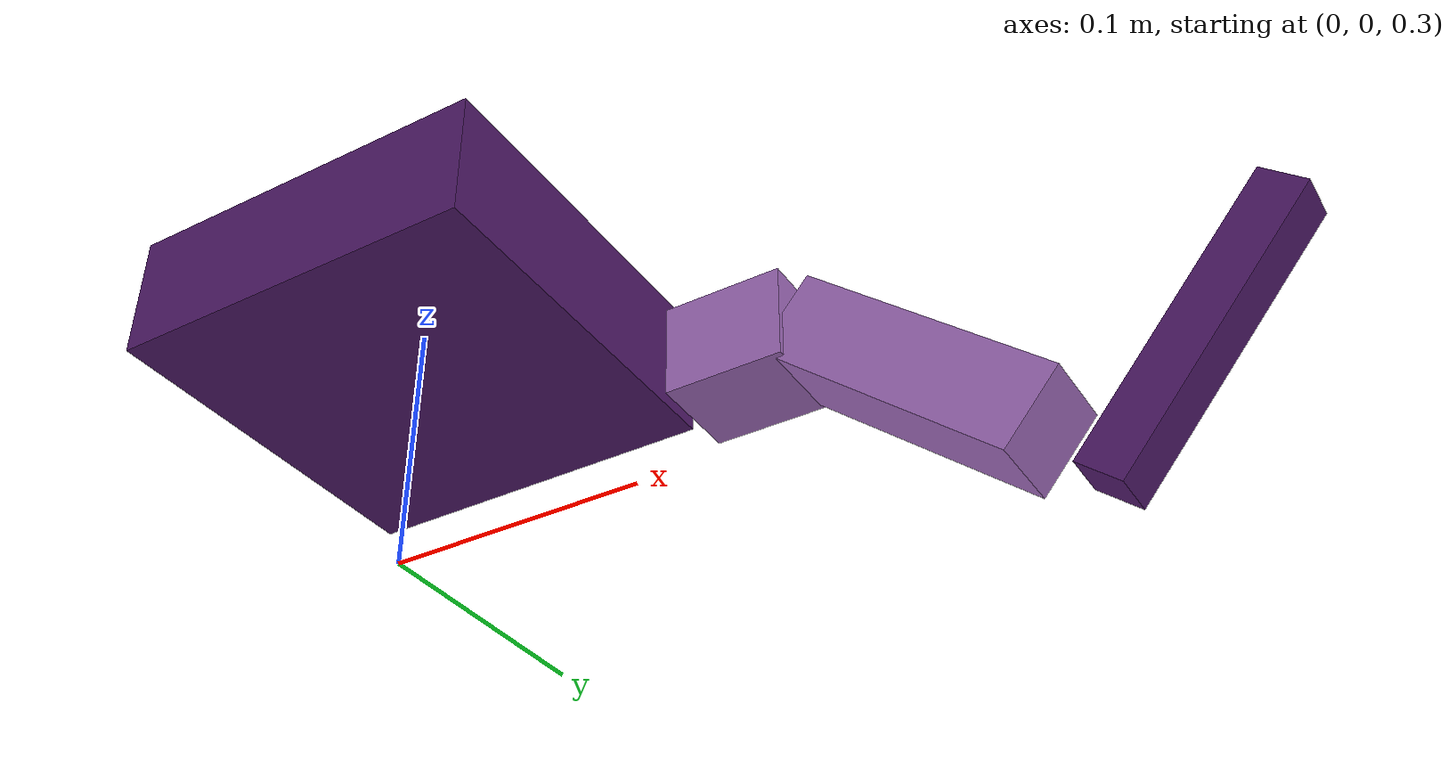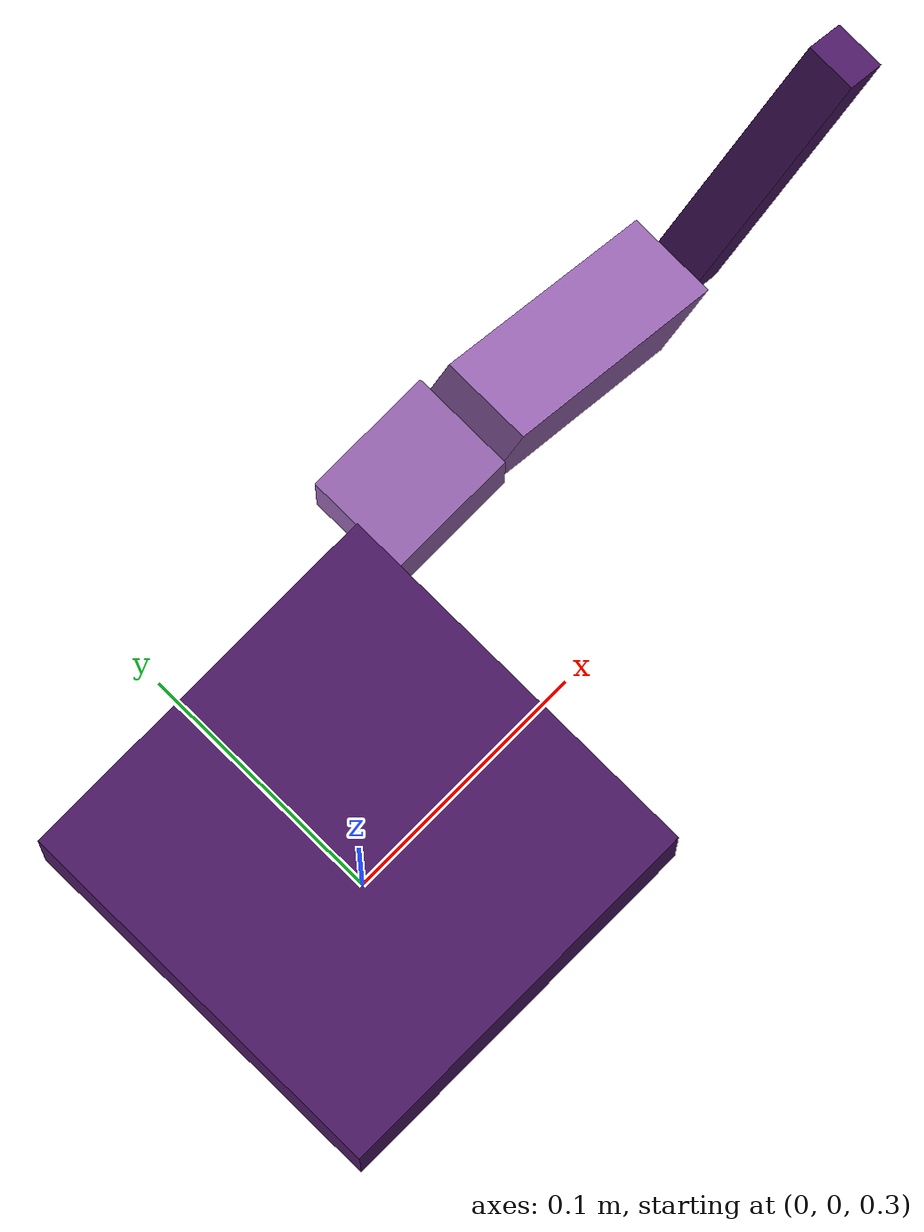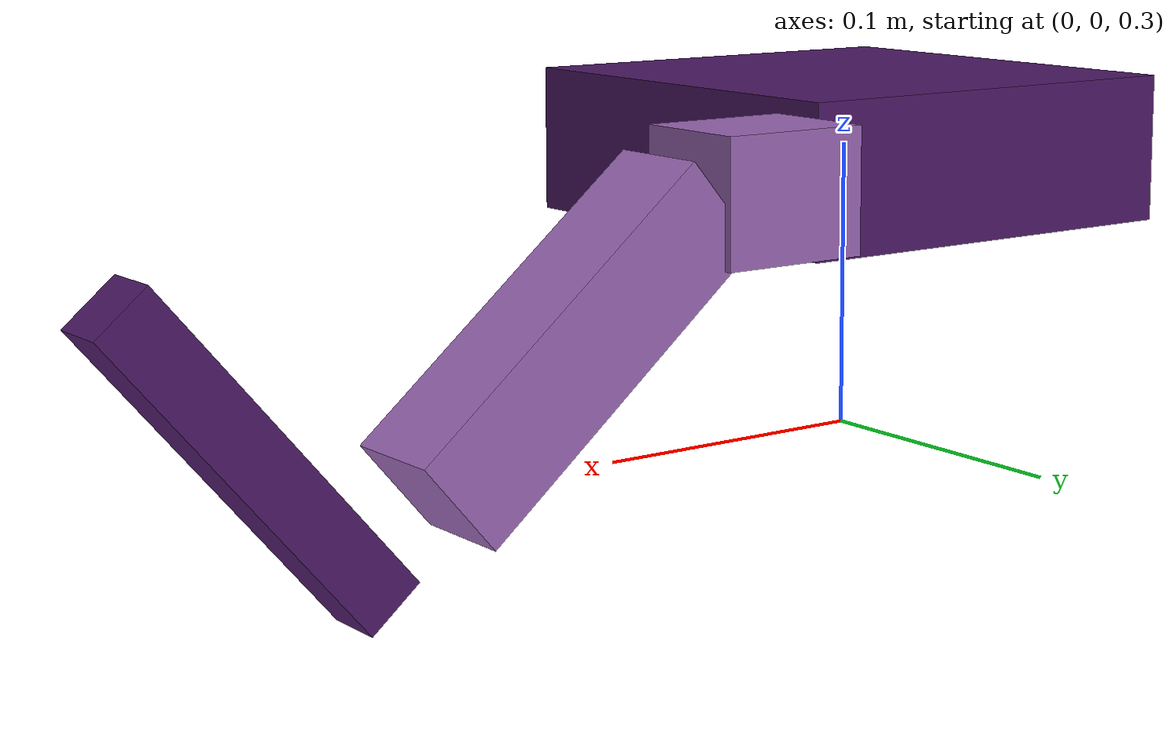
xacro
<?xml version="1.0"?>
<robot name="hexapod_single_leg" xmlns:xacro="http://www.ros.org/wiki/xacro">

  <!--  SINGLE LEG URDF • 3 DOF per leg: COXA, FEMUR, TIBIA                -->
  <!--  Angles are in radians.                                            -->
  <!--  This model represents ONE leg of a hexapod so it can be tested   -->
  <!--  in isolation before scaling to 6 legs.                           -->

  <!-- 40° bracket angle for the femur mount (from your photo) -->
  <xacro:property name="femur_angle" value="${40.0 * pi / 180.0}" />

  <!-- ---- Visual Materials ---- -->
  <material name="purple"><color rgba="0.6 0.4 0.7 1.0"/></material>
  <material name="dark_purple"><color rgba="0.3 0.1 0.4 1.0"/></material>

  <!--  GAZEBO EXTENSIONS                                                  -->
  <!--  that ros2_controllers can command torque/position in simulation.  -->

  <!-- Coxa joint — yaw rotation about world-Z -->
  <gazebo reference="coxa_joint">
    <implicit_spring_damper>1</implicit_spring_damper>
    <finetune>
      <joint>
        <damping>0.01</damping>
        <limit>
          <erp>0.5</erp>
          <max_vel>2.0</max_vel>
        </limit>
      </joint>
    </finetune>
  </gazebo>

  <!-- Femur joint — pitch rotation tilted by femur_angle -->
  <gazebo reference="femur_joint">
    <implicit_spring_damper>1</implicit_spring_damper>
    <finetune>
      <joint>
        <damping>0.01</damping>
        <limit>
          <erp>0.5</erp>
          <max_vel>2.0</max_vel>
        </limit>
      </joint>
    </finetune>
  </gazebo>

  <!-- Tibia joint — pitch rotation -->
  <gazebo reference="tibia_joint">
    <implicit_spring_damper>1</implicit_spring_damper>
    <finetune>
      <joint>
        <damping>0.01</damping>
        <limit>
          <erp>0.5</erp>
          <max_vel>2.0</max_vel>
        </limit>
      </joint>
    </finetune>
  </gazebo>

  <!--  TRANSMISSIONS                                                      -->
  <!--  Tell ros2_controllers these joints are actuated. Each transmission  -->
  <!--  maps a joint to a hardware interface (position, velocity, effort). -->

  <transmission name="coxa_trans">
    <type>joint_state_broadcaster/CoxaJoint</type>
    <joint name="coxa_joint">
      <hardware>
        <interface name="position"/>
        <interface name="velocity"/>
        <interface name="effort"/>
      </hardware>
    </joint>
  </transmission>

  <transmission name="femur_trans">
    <type>joint_state_broadcaster/FemurJoint</type>
    <joint name="femur_joint">
      <hardware>
        <interface name="position"/>
        <interface name="velocity"/>
        <interface name="effort"/>
      </hardware>
    </joint>
  </transmission>

  <transmission name="tibia_trans">
    <type>joint_state_broadcaster/TibiaJoint</type>
    <joint name="tibia_joint">
      <hardware>
        <interface name="position"/>
        <interface name="velocity"/>
        <interface name="effort"/>
      </hardware>
    </joint>
  </transmission>

  <!--  ROBOT LINKS & JOINTS                                                -->

  <!-- Dummy ground link so the leg isn't floating -->
  <link name="world"/>

  <!-- Virtual fixed joint anchors the chassis 0.4m above the ground -->
  <joint name="virtual_joint" type="fixed">
    <parent link="world"/>
    <child link="chassis"/>
    <origin xyz="0 0 0.4" rpy="0 0 0"/>
  </joint>

  <!-- ---- Chassis (base platform) ---- -->
  <link name="chassis">
    <visual>
      <geometry><box size="0.15 0.15 0.05"/></geometry>
      <material name="dark_purple"/>
    </visual>
    <collision><geometry><box size="0.15 0.15 0.05"/></geometry></collision>
    <inertial>
      <mass value="1.0"/>
      <inertia ixx="0.002" ixy="0" ixz="0" iyy="0.002" iyz="0" izz="0.003"/>
    </inertial>
  </link>

  <!-- ---- Joint 1: COXA (yaw about Z, left/right swing) ---- -->
  <joint name="coxa_joint" type="revolute">
    <parent link="chassis"/>
    <child link="coxa_link"/>
    <origin xyz="0.075 0.075 0" rpy="0 0 0"/>
    <axis xyz="0 0 1"/>
    <limit lower="-1.57" upper="1.57" effort="5.0" velocity="2.0"/>
  </joint>

  <link name="coxa_link">
    <visual>
      <origin xyz="0.025 0 0" rpy="0 0 0"/>
      <geometry><box size="0.05 0.04 0.04"/></geometry>
      <material name="purple"/>
    </visual>
    <collision>
      <origin xyz="0.025 0 0" rpy="0 0 0"/>
      <geometry><box size="0.05 0.04 0.04"/></geometry>
    </collision>
    <inertial>
      <mass value="0.05"/>
      <inertia ixx="0.00001" ixy="0" ixz="0" iyy="0.00001" iyz="0" izz="0.00001"/>
    </inertial>
  </link>

  <!-- ---- Joint 2: FEMUR (pitch, tilted 40° to match your bracket) ---- -->
  <joint name="femur_joint" type="revolute">
    <parent link="coxa_link"/>
    <child link="femur_link"/>
    <origin xyz="0.05 0 0" rpy="0 ${femur_angle} 0"/>
    <axis xyz="0 1 0"/>
    <limit lower="-1.57" upper="1.57" effort="5.0" velocity="2.0"/>
  </joint>

  <link name="femur_link">
    <visual>
      <origin xyz="0.06 0 0" rpy="0 0 0"/>
      <geometry><box size="0.12 0.035 0.035"/></geometry>
      <material name="purple"/>
    </visual>
    <collision>
      <origin xyz="0.06 0 0" rpy="0 0 0"/>
      <geometry><box size="0.12 0.035 0.035"/></geometry>
    </collision>
    <inertial>
      <mass value="0.08"/>
      <inertia ixx="0.00002" ixy="0" ixz="0" iyy="0.00005" iyz="0" izz="0.00005"/>
    </inertial>
  </link>

  <!-- ---- Joint 3: TIBIA (pitch, lower leg) ---- -->
  <joint name="tibia_joint" type="revolute">
    <parent link="femur_link"/>
    <child link="tibia_link"/>
    <origin xyz="0.12 0 0" rpy="0 0 0"/>
    <axis xyz="0 1 0"/>
    <limit lower="-1.57" upper="1.57" effort="5.0" velocity="2.0"/>
  </joint>

  <link name="tibia_link">
    <visual>
      <origin xyz="0.03 0 0.05" rpy="0 0 0"/>
      <geometry><box size="0.02 0.02 0.12"/></geometry>
      <material name="dark_purple"/>
    </visual>
    <collision>
      <origin xyz="0.03 0 0.05" rpy="0 0 0"/>
      <geometry><box size="0.02 0.02 0.12"/></geometry>
    </collision>
    <inertial>
      <mass value="0.04"/>
      <inertia ixx="0.00004" ixy="0" ixz="0" iyy="0.00004" iyz="0" izz="0.00001"/>
    </inertial>
  </link>

</robot>
